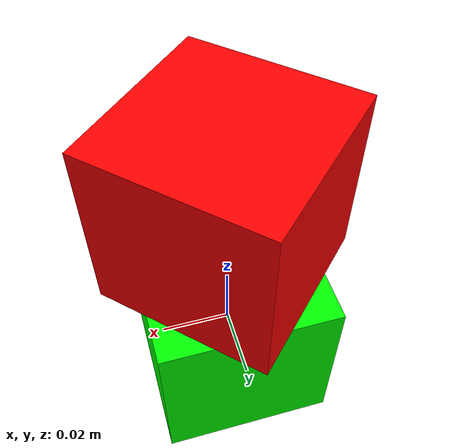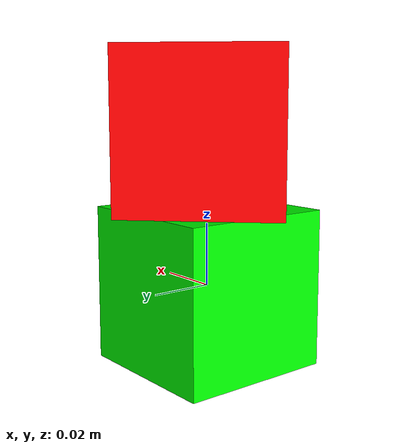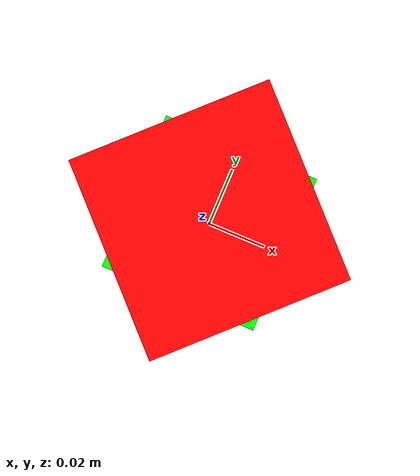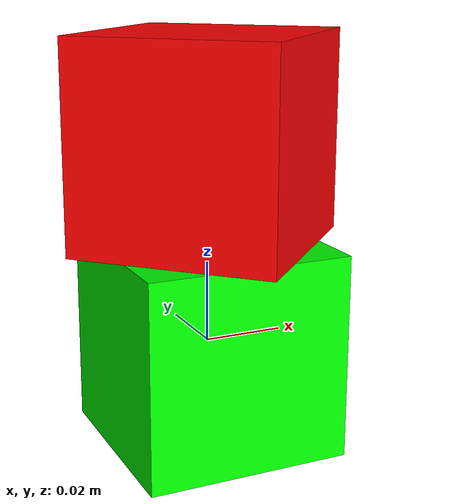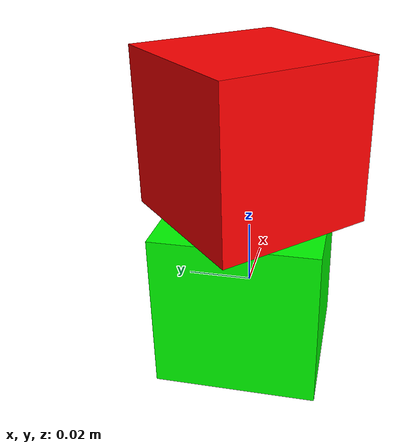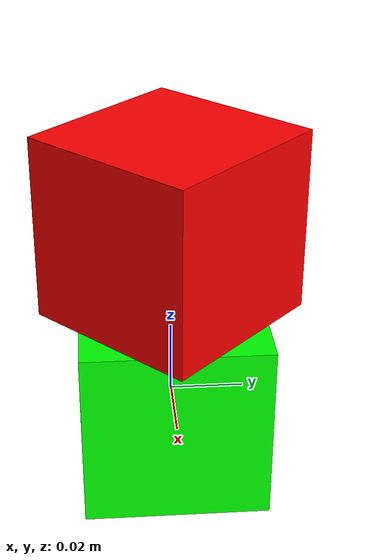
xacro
<?xml version="1.0"?>
<robot xmlns:xacro="http://www.ros.org/wiki/xacro" name="test">
  <link name="box1">
    <inertial>
      <origin xyz="0.0 0.0 0.0" rpy="0.0 0.0 0.0"/>
      <mass value="1.0"/>
      <inertia ixx="1.0" ixy="0.0" ixz="0.0" iyy="1.0" iyz="0.0" izz="1.0"/>
    </inertial>
    <visual name="visual_base">
      <origin xyz="0.0 0.0 0.0" rpy="0.0 0.0 0.0"/>
      <geometry>
        <box size="0.05 0.05 0.05"/>
      </geometry>
      <material name="green">
        <color rgba="0.0 1.0 0.0 1.0"/>
        <texture filename=""/>
      </material>
    </visual>
    <collision>
      <origin xyz="0.0 0.0 0.0" rpy="0.0 0.0 0.0"/>
      <geometry>
        <box size="0.05 0.05 0.05"/>
      </geometry>
    </collision>
  </link>
  <link name="box2">
    <inertial>
      <origin xyz="0.0 0.0 0.0" rpy="0.0 0.0 0.0"/>
      <mass value="1.0"/>
      <inertia ixx="1.0" ixy="0.0" ixz="0.0" iyy="1.0" iyz="0.0" izz="1.0"/>
    </inertial>
    <visual name="visual_link">
      <origin xyz="0.0 0.0 0.0" rpy="0.0 0.0 0.0"/>
      <geometry>
        <box size="0.05 0.05 0.05"/>
      </geometry>
      <material name="red">
        <color rgba="1.0 0.0 0.0 1.0"/>
        <texture filename=""/>
      </material>
    </visual>
    <collision>
      <origin xyz="0.0 0.0 0.0" rpy="0.0 0.0 0.0"/>
      <geometry>
        <box size="0.05 0.05 0.05"/>
      </geometry>
    </collision>
  </link>
  <joint name="box1_to_box2" type="fixed">
    <origin xyz="0.0 0.0 0.05" rpy="0.0 0.0 0.7854"/>
    <parent link="box1"/>
    <child link="box2"/>
  </joint>
  <gazebo reference="box1_to_box2">
    <preserveFixedJoint>true</preserveFixedJoint>
  </gazebo>
</robot>
